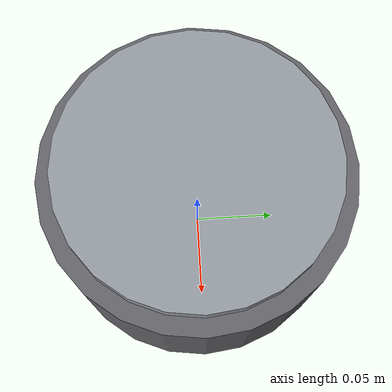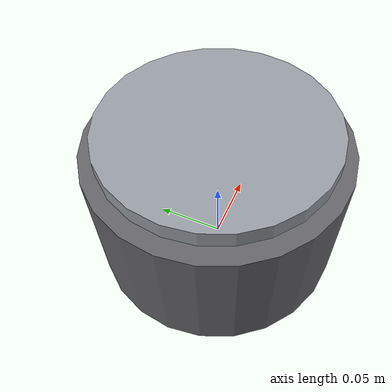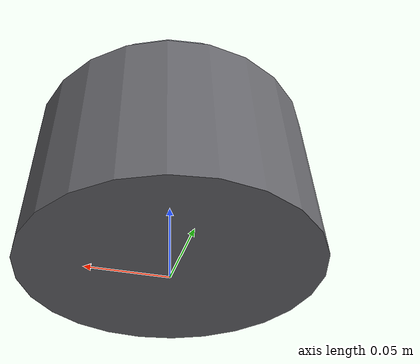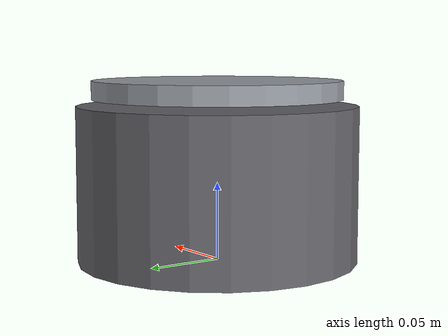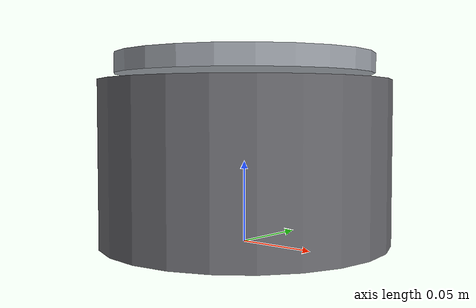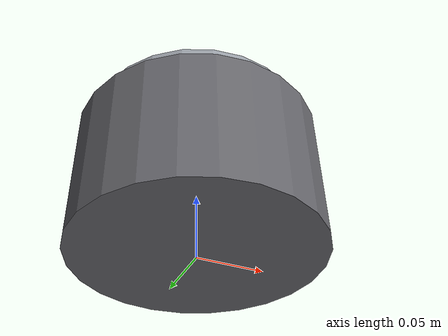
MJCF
<?xml version="1.0" encoding="utf-8"?>
<mujoco model="welding_positioner">
  <compiler angle="radian" autolimits="true"/>
  <default>
    <default class="body"><geom contype="1" conaffinity="1"/></default>
  </default>
  <worldbody>
    <body name="base">
      <geom type="cylinder" size="0.09 0.05" pos="0 0 0.05" rgba="0.4 0.4 0.42 1" class="body"/>
      <body name="turntable" pos="0 0 0.11">
        <joint name="turntable_joint" type="hinge" axis="0 0 1" range="-3.14159 3.14159" damping="0.15" frictionloss="0.05"/>
  <geom type="cylinder" size="0.08 0.006" pos="0 0 0" rgba="0.6 0.62 0.65 1" class="body"/>
      </body>
    </body>
  </worldbody>
</mujoco>
